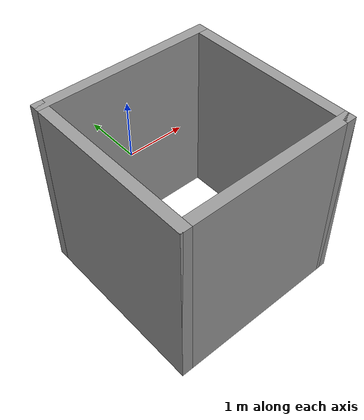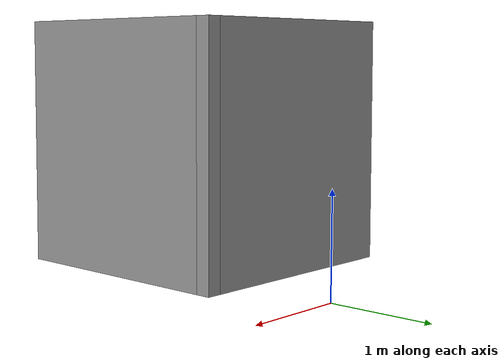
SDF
<?xml version='1.0'?>
<sdf version='1.6'>
  <model name='Espacio_1'>
    <pose frame=''>-0.665 -2.165 0 0 -0 0</pose>
    <link name='Wall_6'>
      <collision name='Wall_6_Collision'>
        <geometry>
          <box>
            <size>2.5 0.15 2.5</size>
          </box>
        </geometry>
        <pose frame=''>0 0 1.25 0 -0 0</pose>
      </collision>
      <visual name='Wall_6_Visual'>
        <pose frame=''>0 0 1.25 0 -0 0</pose>
        <geometry>
          <box>
            <size>2.5 0.15 2.5</size>
          </box>
        </geometry>
        <material>
          <script>
            <uri>file://media/materials/scripts/gazebo.material</uri>
            <name>Gazebo/Grey</name>
          </script>
          <ambient>1 1 1 1</ambient>
        </material>
      </visual>
      <pose frame=''>1.175 0 0 0 -0 1.5708</pose>
    </link>
    <link name='Wall_7'>
      <collision name='Wall_7_Collision'>
        <geometry>
          <box>
            <size>2.5 0.15 2.5</size>
          </box>
        </geometry>
        <pose frame=''>0 0 1.25 0 -0 0</pose>
      </collision>
      <visual name='Wall_7_Visual'>
        <pose frame=''>0 0 1.25 0 -0 0</pose>
        <geometry>
          <box>
            <size>2.5 0.15 2.5</size>
          </box>
        </geometry>
        <material>
          <script>
            <uri>file://media/materials/scripts/gazebo.material</uri>
            <name>Gazebo/Grey</name>
          </script>
          <ambient>1 1 1 1</ambient>
        </material>
      </visual>
      <pose frame=''>0 1.175 0 0 -0 3.14159</pose>
    </link>
    <link name='Wall_8'>
      <collision name='Wall_8_Collision'>
        <geometry>
          <box>
            <size>2.5 0.15 2.5</size>
          </box>
        </geometry>
        <pose frame=''>0 0 1.25 0 -0 0</pose>
      </collision>
      <visual name='Wall_8_Visual'>
        <pose frame=''>0 0 1.25 0 -0 0</pose>
        <geometry>
          <box>
            <size>2.5 0.15 2.5</size>
          </box>
        </geometry>
        <material>
          <script>
            <uri>file://media/materials/scripts/gazebo.material</uri>
            <name>Gazebo/Grey</name>
          </script>
          <ambient>1 1 1 1</ambient>
        </material>
      </visual>
      <pose frame=''>-1.175 0 0 0 0 -1.5708</pose>
    </link>
    <link name='Wall_9'>
      <collision name='Wall_9_Collision'>
        <geometry>
          <box>
            <size>2.5 0.15 2.5</size>
          </box>
        </geometry>
        <pose frame=''>0 0 1.25 0 -0 0</pose>
      </collision>
      <visual name='Wall_9_Visual'>
        <pose frame=''>0 0 1.25 0 -0 0</pose>
        <geometry>
          <box>
            <size>2.5 0.15 2.5</size>
          </box>
        </geometry>
        <material>
          <script>
            <uri>file://media/materials/scripts/gazebo.material</uri>
            <name>Gazebo/Grey</name>
          </script>
          <ambient>1 1 1 1</ambient>
        </material>
      </visual>
      <pose frame=''>0 -1.175 0 0 -0 0</pose>
    </link>
    <static>1</static>
  </model>
</sdf>
